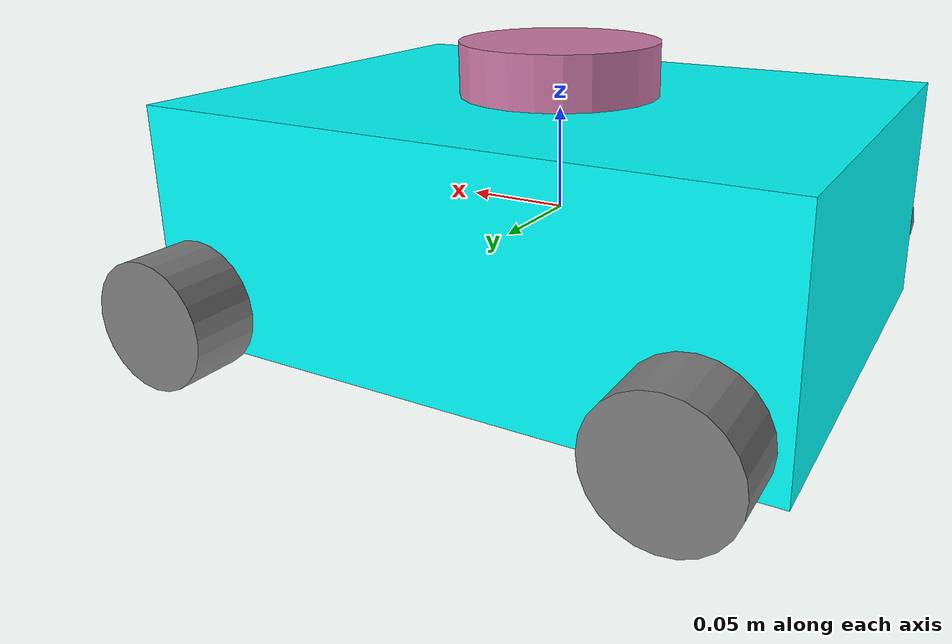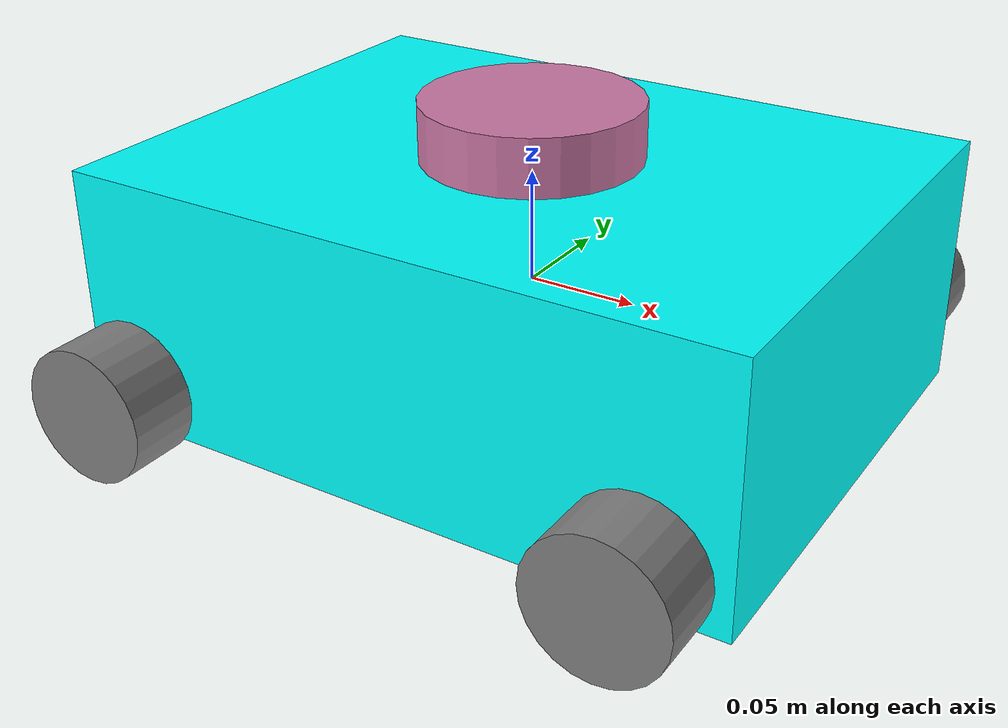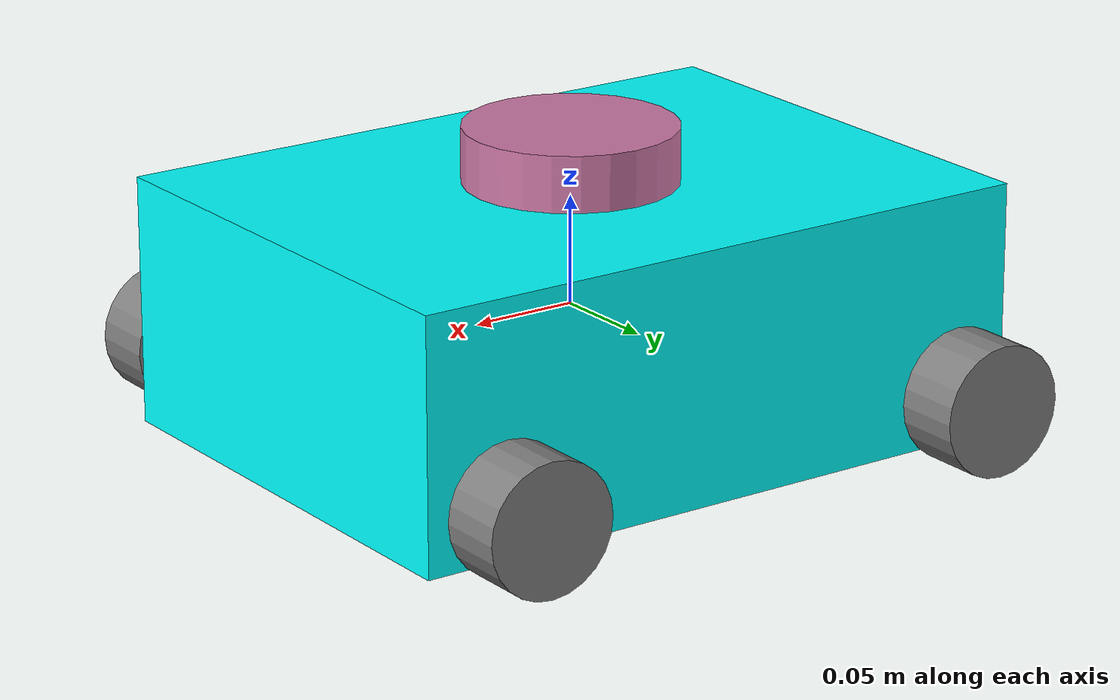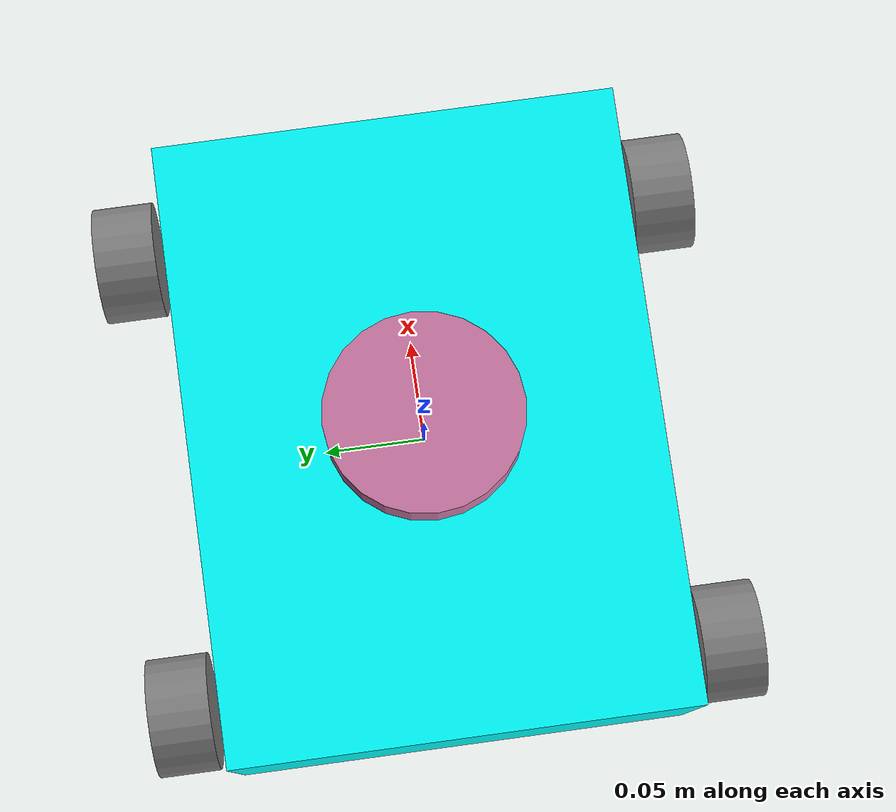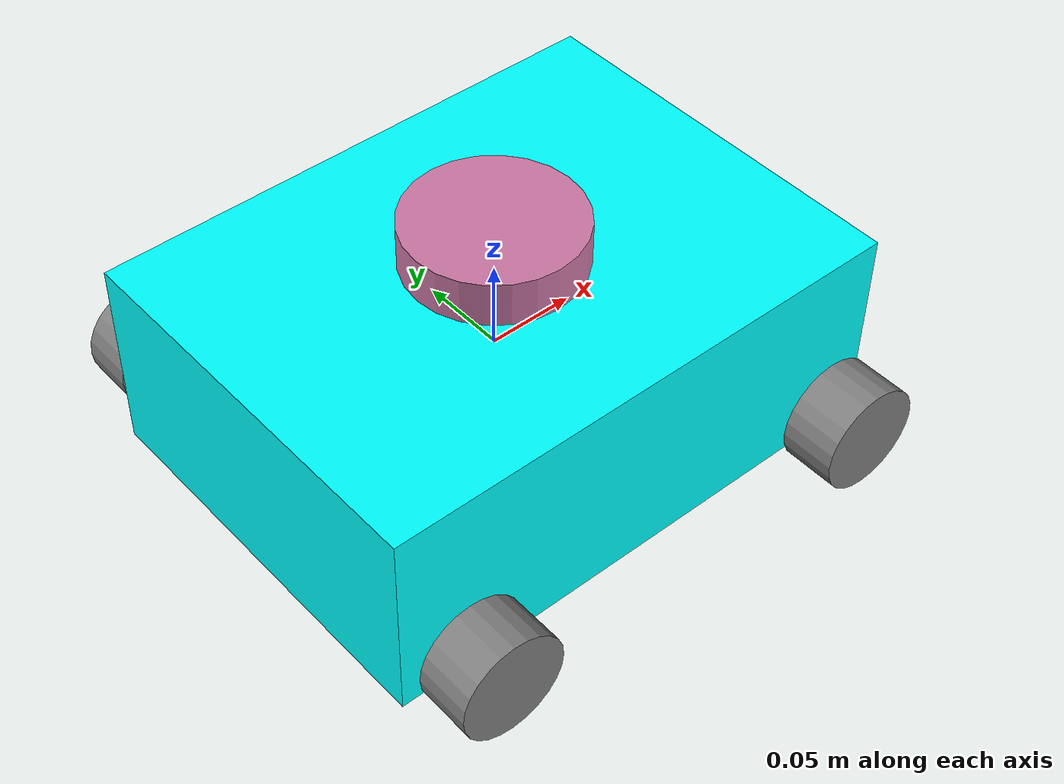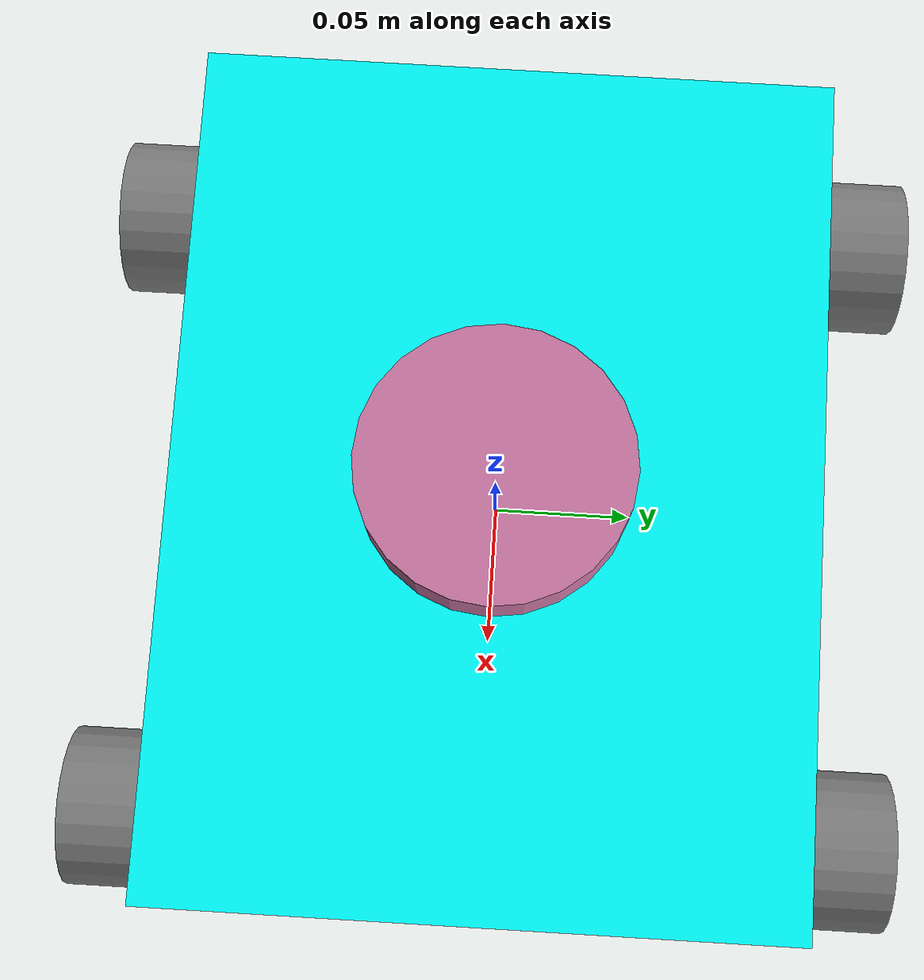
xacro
<?xml version="1.0"?>
<robot name="mech2bot" xmlns:xacro="http://ros.org/wiki/xacro">

<!--xacro:include filename="ros2_control.xacro" /-->

    <!-- Define robot constants -->
    <xacro:property name="base_width" value="0.2286"/>
    <xacro:property name="base_length" value="0.3048"/>
    <xacro:property name="base_height" value="0.1143"/>

    <xacro:property name="wheel_radius" value="0.03"/>
    <xacro:property name="wheel_width" value="0.031"/>
    <xacro:property name="wheel_ygap" value="0.025"/>
    <xacro:property name="wheel_zoff" value="0.03"/>
    <xacro:property name="wheel_xoff" value="0.1189"/>

    <!-- Define inertial property macros -->
    <xacro:macro name="box_inertia" params="m w h d">
        <inertial>
            <origin xyz="0 0 0" rpy="${pi/2} 0 ${pi/2}"/>
            <mass value="${m}"/>
            <inertia ixx="${(m/12) * (h*h + d*d)}" ixy="0.0" ixz="0.0" iyy="${(m/12) * (w*w + d*d)}" iyz="0.0" izz="${(m/12) * (w*w + h*h)}"/>
        </inertial>
    </xacro:macro>

    <xacro:macro name="cylinder_inertia" params="m r h">
        <inertial>
            <origin xyz="0 0 0" rpy="${pi/2} 0 0" />
            <mass value="${m}"/>
            <inertia ixx="${(m/12) * (3*r*r + h*h)}" ixy = "0" ixz = "0" iyy="${(m/12) * (3*r*r + h*h)}" iyz = "0" izz="${(m/2) * (r*r)}"/>
        </inertial>
    </xacro:macro>

    <!-- Robot Base -->
    <link name="base_link">
        <visual>
            <geometry>
                <box size="${base_length} ${base_width} ${base_height}"/>
            </geometry>
            <material name="Cyan">
                <color rgba="0 1.0 1.0 1.0"/>
            </material>
        </visual>
        <collision>
            <geometry>
                <box size="${base_length} ${base_width} ${base_height}"/>
            </geometry>
        </collision>

        <xacro:box_inertia m="15" w="${base_width}" d="${base_length}" h="${base_height}"/>
    </link>

    <!-- Robot Footprint -->
    <link name="base_footprint"/>

    <joint name="base_joint" type="fixed">
        <parent link="base_link"/>
        <child link="base_footprint"/>
        <origin xyz="0.0 0.0 ${-(wheel_radius+wheel_zoff)}" rpy="0 0 0"/>
    </joint>

    <!-- Wheels -->
    <xacro:macro name="wheel" params="prefix x_reflect y_reflect">
        <link name="${prefix}_link">
            <visual>
                <origin xyz="0 0 0" rpy="${pi/2} 0 0"/>
                <geometry>
                    <cylinder radius="${wheel_radius}" length="${wheel_width}"/>
                </geometry>
                <material name="Gray">
                    <color rgba="0.5 0.5 0.5 1.0"/>
                </material>
            </visual>
            <collision>
                <origin xyz="0 0 0" rpy="${pi/2} 0 0"/>
                <geometry>
                    <cylinder radius="${wheel_radius}" length="${wheel_width}"/>
                </geometry>
            </collision>

            <xacro:cylinder_inertia m="0.5" r="${wheel_radius}" h="${wheel_width}"/>
        </link>

        <joint name="${prefix}_joint" type="continuous">
            <parent link="base_link"/>
            <child link="${prefix}_link"/>
            <origin xyz="${x_reflect*wheel_xoff} ${y_reflect*(base_width/2+wheel_ygap)} ${-wheel_zoff}" rpy="0 0 0"/>
            <axis xyz="0 1 0"/>
        </joint>
    </xacro:macro>

    <xacro:wheel prefix="drivewh1_l" x_reflect="-1" y_reflect="1" />
    <xacro:wheel prefix="drivewh1_r" x_reflect="-1" y_reflect="-1" />
    <xacro:wheel prefix="drivewh2_l" x_reflect="1" y_reflect="-1" />
    <xacro:wheel prefix="drivewh2_r" x_reflect="1" y_reflect="1" />

    <!-- LiDAR -->
    <link name="lidar_link">
        <inertial>
            <origin xyz="0 0 0" rpy="0 0 0"/>
            <mass value="0.19"/>
            <inertia ixx="0.001" ixy="0" ixz="0" iyy="0.001" iyz="0" izz="0.001"/>
        </inertial>
        <collision>
            <origin xyz="0 0 0" rpy="0 0 0"/>
            <geometry>
                <cylinder radius="0.0484" length="0.051"/>
            </geometry>
        </collision>
        <visual>
            <origin xyz="0 0 0" rpy="0 0 0"/>
            <geometry>
                <cylinder radius="0.0484" length="0.051"/>
            </geometry>
        </visual>
    </link>

    <joint name="lidar_joint" type="fixed">
        <parent link="base_link"/>
        <child link="lidar_link"/>
        <origin xyz="0 0 0.0572" rpy="0 0 0"/>
    </joint>
</robot>
